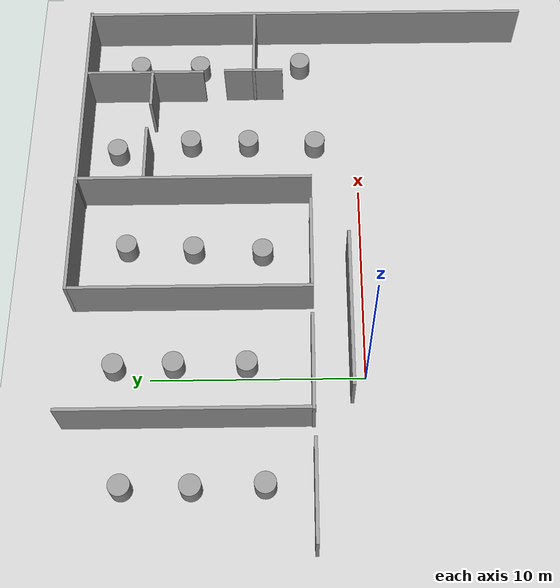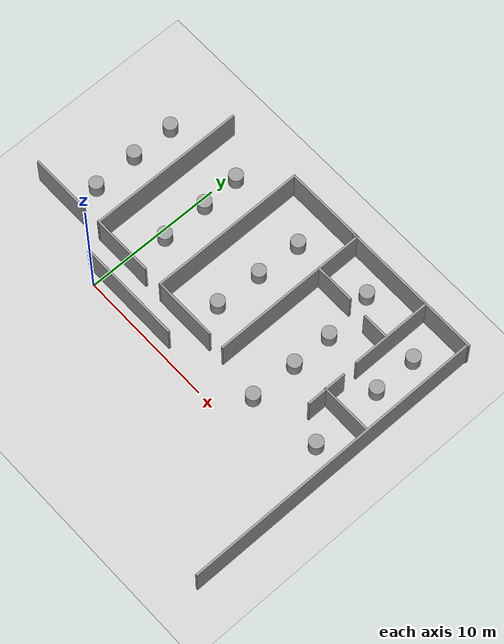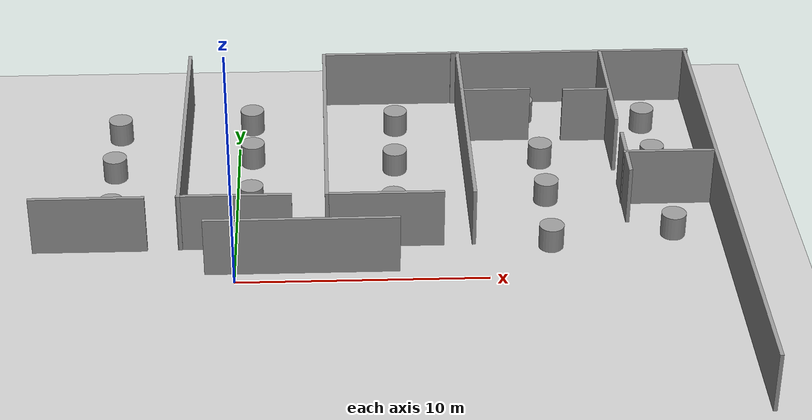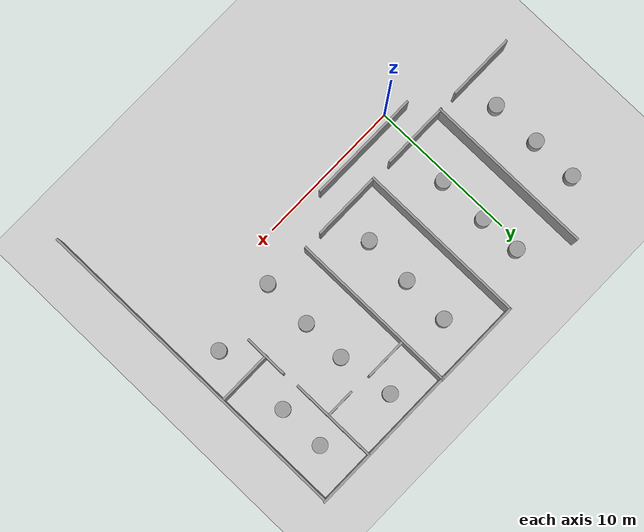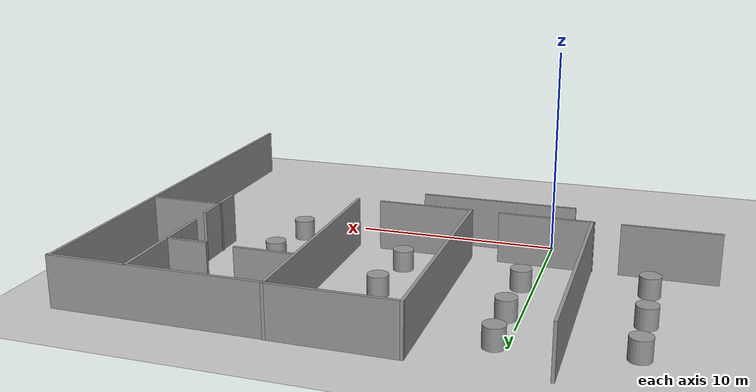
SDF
<sdf version="1.7">
 <world name="default">
  <model name="ground_plane">
   <static>1</static>
   <link name="link">
    <collision name="collision">
     <geometry><plane><normal>0 0 1</normal><size>100 100</size></plane></geometry>
     <surface>
      <contact><collide_bitmask>65535</collide_bitmask></contact>
      <friction><ode><mu>100</mu><mu2>50</mu2></ode></friction>
     </surface>
    </collision>
    <visual name="visual">
     <cast_shadows>0</cast_shadows>
     <geometry><plane><normal>0 0 1</normal><size>100 100</size></plane></geometry>
     <material>
      <script><uri>file://media/materials/scripts/gazebo.material</uri><name>Gazebo/Grey</name></script>
     </material>
    </visual>
   </link>
  </model>
  <model name="5th_v2">
   <link name="Wall_101">
    <pose>19.5337 2.57533 0 0 0 -1.5708</pose>
    <visual name="Wall_101_Visual">
     <pose>0 0 1.25 0 -0 0</pose>
     <geometry><box><size>22.5 0.15 2.5</size></box></geometry>
     <material>
      <script><uri>file://media/materials/scripts/gazebo.material</uri><name>Gazebo/Grey</name></script>
      <ambient>1 1 1 1</ambient>
     </material>
     <meta><layer>0</layer></meta>
    </visual>
    <collision name="Wall_101_Collision">
     <pose>0 0 1.25 0 -0 0</pose>
     <geometry><box><size>22.5 0.15 2.5</size></box></geometry>
     <surface>
      <friction>
       <ode><mu>1</mu><mu2>1</mu2><fdir1>0 0 0</fdir1><slip1>0</slip1><slip2>0</slip2></ode>
       <torsional>
        <coefficient>1</coefficient>
        <patch_radius>0</patch_radius>
        <surface_radius>0</surface_radius>
        <use_patch_radius>1</use_patch_radius>
        <ode><slip>0</slip></ode>
       </torsional>
      </friction>
      <bounce><restitution_coefficient>0</restitution_coefficient><threshold>1e+06</threshold></bounce>
      <contact>
       <collide_without_contact>0</collide_without_contact>
       <collide_without_contact_bitmask>1</collide_without_contact_bitmask>
       <collide_bitmask>1</collide_bitmask>
       <ode>
        <soft_cfm>0</soft_cfm>
        <soft_erp>0.2</soft_erp>
        <kp>1e+13</kp>
        <kd>1</kd>
        <max_vel>0.01</max_vel>
        <min_depth>0</min_depth>
       </ode>
       <bullet>
        <split_impulse>1</split_impulse>
        <split_impulse_penetration_threshold>-0.01</split_impulse_penetration_threshold>
        <soft_cfm>0</soft_cfm>
        <soft_erp>0.2</soft_erp>
        <kp>1e+13</kp>
        <kd>1</kd>
       </bullet>
      </contact>
     </surface>
    </collision>
   </link>
   <link name="Wall_108">
    <pose>15.8645 5.27903 0 0 -0 1.5708</pose>
    <inertial>
     <inertia><ixx>0</ixx><ixy>0</ixy><ixz>0</ixz><iyy>0</iyy><iyz>0</iyz><izz>0</izz></inertia>
     <mass>0</mass>
    </inertial>
    <visual name="Wall_108_Visual">
     <pose>0 0 1.25 0 -0 0</pose>
     <geometry><box><size>2.96394 0.15 2.5</size></box></geometry>
     <material>
      <script><uri>file://media/materials/scripts/gazebo.material</uri><name>Gazebo/Grey</name></script>
      <ambient>1 1 1 1</ambient>
     </material>
     <meta><layer>0</layer></meta>
    </visual>
    <collision name="Wall_108_Collision">
     <pose>0 0 1.25 0 -0 0</pose>
     <geometry><box><size>2.96394 0.15 2.5</size></box></geometry>
     <surface>
      <friction>
       <ode><mu>1</mu><mu2>1</mu2><fdir1>0 0 0</fdir1><slip1>0</slip1><slip2>0</slip2></ode>
       <torsional>
        <coefficient>1</coefficient>
        <patch_radius>0</patch_radius>
        <surface_radius>0</surface_radius>
        <use_patch_radius>1</use_patch_radius>
        <ode><slip>0</slip></ode>
       </torsional>
      </friction>
      <bounce><restitution_coefficient>0</restitution_coefficient><threshold>1e+06</threshold></bounce>
      <contact>
       <collide_without_contact>0</collide_without_contact>
       <collide_without_contact_bitmask>1</collide_without_contact_bitmask>
       <collide_bitmask>1</collide_bitmask>
       <ode>
        <soft_cfm>0</soft_cfm>
        <soft_erp>0.2</soft_erp>
        <kp>1e+13</kp>
        <kd>1</kd>
        <max_vel>0.01</max_vel>
        <min_depth>0</min_depth>
       </ode>
       <bullet>
        <split_impulse>1</split_impulse>
        <split_impulse_penetration_threshold>-0.01</split_impulse_penetration_threshold>
        <soft_cfm>0</soft_cfm>
        <soft_erp>0.2</soft_erp>
        <kp>1e+13</kp>
        <kd>1</kd>
       </bullet>
      </contact>
     </surface>
    </collision>
   </link>
   <link name="Wall_108_clone_1">
    <pose>15.7933 10.8016 0 0 -0 1.5708</pose>
    <inertial>
     <inertia><ixx>0</ixx><ixy>0</ixy><ixz>0</ixz><iyy>0</iyy><iyz>0</iyz><izz>0</izz></inertia>
     <mass>0</mass>
    </inertial>
    <visual name="Wall_108_Visual">
     <pose>0 0 1.25 0 -0 0</pose>
     <geometry><box><size>5.97377 0.15 2.5</size></box></geometry>
     <material>
      <script><uri>file://media/materials/scripts/gazebo.material</uri><name>Gazebo/Grey</name></script>
      <ambient>1 1 1 1</ambient>
      <shader type="pixel"/>
     </material>
     <meta><layer>0</layer></meta>
    </visual>
    <collision name="Wall_108_Collision">
     <pose>0 0 1.25 0 -0 0</pose>
     <geometry><box><size>5.97377 0.15 2.5</size></box></geometry>
     <surface>
      <friction>
       <ode><mu>1</mu><mu2>1</mu2><fdir1>0 0 0</fdir1><slip1>0</slip1><slip2>0</slip2></ode>
       <torsional>
        <coefficient>1</coefficient>
        <patch_radius>0</patch_radius>
        <surface_radius>0</surface_radius>
        <use_patch_radius>1</use_patch_radius>
        <ode><slip>0</slip></ode>
       </torsional>
      </friction>
      <bounce><restitution_coefficient>0</restitution_coefficient><threshold>1e+06</threshold></bounce>
      <contact>
       <collide_without_contact>0</collide_without_contact>
       <collide_without_contact_bitmask>1</collide_without_contact_bitmask>
       <collide_bitmask>1</collide_bitmask>
       <ode>
        <soft_cfm>0</soft_cfm>
        <soft_erp>0.2</soft_erp>
        <kp>1e+13</kp>
        <kd>1</kd>
        <max_vel>0.01</max_vel>
        <min_depth>0</min_depth>
       </ode>
       <bullet>
        <split_impulse>1</split_impulse>
        <split_impulse_penetration_threshold>-0.01</split_impulse_penetration_threshold>
        <soft_cfm>0</soft_cfm>
        <soft_erp>0.2</soft_erp>
        <kp>1e+13</kp>
        <kd>1</kd>
       </bullet>
      </contact>
     </surface>
    </collision>
   </link>
   <link name="Wall_114">
    <pose>17.6178 5.25914 0 0 -0 0</pose>
    <inertial>
     <inertia><ixx>0</ixx><ixy>0</ixy><ixz>0</ixz><iyy>0</iyy><iyz>0</iyz><izz>0</izz></inertia>
     <mass>0</mass>
    </inertial>
    <visual name="Wall_114_Visual">
     <pose>0 0 1.25 0 -0 0</pose>
     <geometry><box><size>3.72578 0.15 2.5</size></box></geometry>
     <material>
      <script><uri>file://media/materials/scripts/gazebo.material</uri><name>Gazebo/Grey</name></script>
      <ambient>1 1 1 1</ambient>
     </material>
     <meta><layer>0</layer></meta>
    </visual>
    <collision name="Wall_114_Collision">
     <pose>0 0 1.25 0 -0 0</pose>
     <geometry><box><size>3.72578 0.15 2.5</size></box></geometry>
     <surface>
      <friction>
       <ode><mu>1</mu><mu2>1</mu2><fdir1>0 0 0</fdir1><slip1>0</slip1><slip2>0</slip2></ode>
       <torsional>
        <coefficient>1</coefficient>
        <patch_radius>0</patch_radius>
        <surface_radius>0</surface_radius>
        <use_patch_radius>1</use_patch_radius>
        <ode><slip>0</slip></ode>
       </torsional>
      </friction>
      <bounce><restitution_coefficient>0</restitution_coefficient><threshold>1e+06</threshold></bounce>
      <contact>
       <collide_without_contact>0</collide_without_contact>
       <collide_without_contact_bitmask>1</collide_without_contact_bitmask>
       <collide_bitmask>1</collide_bitmask>
       <ode>
        <soft_cfm>0</soft_cfm>
        <soft_erp>0.2</soft_erp>
        <kp>1e+13</kp>
        <kd>1</kd>
        <max_vel>0.01</max_vel>
        <min_depth>0</min_depth>
       </ode>
       <bullet>
        <split_impulse>1</split_impulse>
        <split_impulse_penetration_threshold>-0.01</split_impulse_penetration_threshold>
        <soft_cfm>0</soft_cfm>
        <soft_erp>0.2</soft_erp>
        <kp>1e+13</kp>
        <kd>1</kd>
       </bullet>
      </contact>
     </surface>
    </collision>
   </link>
   <link name="Wall_114_clone_0">
    <pose>10.9394 10.5296 0 0 -0 0</pose>
    <inertial>
     <inertia><ixx>0</ixx><ixy>0</ixy><ixz>0</ixz><iyy>0</iyy><iyz>0</iyz><izz>0</izz></inertia>
     <mass>0</mass>
    </inertial>
    <visual name="Wall_114_Visual">
     <pose>0 0 1.25 0 -0 0</pose>
     <geometry><box><size>2.97072 0.15 2.5</size></box></geometry>
     <material>
      <script><uri>file://media/materials/scripts/gazebo.material</uri><name>Gazebo/Grey</name></script>
      <ambient>1 1 1 1</ambient>
      <shader type="pixel"/>
     </material>
     <meta><layer>0</layer></meta>
    </visual>
    <collision name="Wall_114_Collision">
     <pose>0 0 1.25 0 -0 0</pose>
     <geometry><box><size>2.97072 0.15 2.5</size></box></geometry>
     <surface>
      <friction>
       <ode><mu>1</mu><mu2>1</mu2><fdir1>0 0 0</fdir1><slip1>0</slip1><slip2>0</slip2></ode>
       <torsional>
        <coefficient>1</coefficient>
        <patch_radius>0</patch_radius>
        <surface_radius>0</surface_radius>
        <use_patch_radius>1</use_patch_radius>
        <ode><slip>0</slip></ode>
       </torsional>
      </friction>
      <bounce><restitution_coefficient>0</restitution_coefficient><threshold>1e+06</threshold></bounce>
      <contact>
       <collide_without_contact>0</collide_without_contact>
       <collide_without_contact_bitmask>1</collide_without_contact_bitmask>
       <collide_bitmask>1</collide_bitmask>
       <ode>
        <soft_cfm>0</soft_cfm>
        <soft_erp>0.2</soft_erp>
        <kp>1e+13</kp>
        <kd>1</kd>
        <max_vel>0.01</max_vel>
        <min_depth>0</min_depth>
       </ode>
       <bullet>
        <split_impulse>1</split_impulse>
        <split_impulse_penetration_threshold>-0.01</split_impulse_penetration_threshold>
        <soft_cfm>0</soft_cfm>
        <soft_erp>0.2</soft_erp>
        <kp>1e+13</kp>
        <kd>1</kd>
       </bullet>
      </contact>
     </surface>
    </collision>
   </link>
   <link name="Wall_114_clone_0_clone">
    <pose>14.7944 10.4041 0 0 -0 0</pose>
    <inertial>
     <inertia><ixx>0</ixx><ixy>0</ixy><ixz>0</ixz><iyy>0</iyy><iyz>0</iyz><izz>0</izz></inertia>
     <mass>0</mass>
    </inertial>
    <visual name="Wall_114_Visual">
     <pose>0 0 1.25 0 -0 0</pose>
     <geometry><box><size>1.96716 0.15 2.5</size></box></geometry>
     <material>
      <script><uri>file://media/materials/scripts/gazebo.material</uri><name>Gazebo/Grey</name></script>
      <ambient>1 1 1 1</ambient>
      <shader type="pixel"/>
     </material>
     <meta><layer>0</layer></meta>
    </visual>
    <collision name="Wall_114_Collision">
     <pose>0 0 1.25 0 -0 0</pose>
     <geometry><box><size>1.96716 0.15 2.5</size></box></geometry>
     <surface>
      <friction>
       <ode><mu>1</mu><mu2>1</mu2><fdir1>0 0 0</fdir1><slip1>0</slip1><slip2>0</slip2></ode>
       <torsional>
        <coefficient>1</coefficient>
        <patch_radius>0</patch_radius>
        <surface_radius>0</surface_radius>
        <use_patch_radius>1</use_patch_radius>
        <ode><slip>0</slip></ode>
       </torsional>
      </friction>
      <bounce><restitution_coefficient>0</restitution_coefficient><threshold>1e+06</threshold></bounce>
      <contact>
       <collide_without_contact>0</collide_without_contact>
       <collide_without_contact_bitmask>1</collide_without_contact_bitmask>
       <collide_bitmask>1</collide_bitmask>
       <ode>
        <soft_cfm>0</soft_cfm>
        <soft_erp>0.2</soft_erp>
        <kp>1e+13</kp>
        <kd>1</kd>
        <max_vel>0.01</max_vel>
        <min_depth>0</min_depth>
       </ode>
       <bullet>
        <split_impulse>1</split_impulse>
        <split_impulse_penetration_threshold>-0.01</split_impulse_penetration_threshold>
        <soft_cfm>0</soft_cfm>
        <soft_erp>0.2</soft_erp>
        <kp>1e+13</kp>
        <kd>1</kd>
       </bullet>
      </contact>
     </surface>
    </collision>
   </link>
   <link name="Wall_32">
    <pose>-2.18428 8.13641 0 0 -0 1.5708</pose>
    <visual name="Wall_32_Visual">
     <pose>0 0 1.25 0 -0 0</pose>
     <geometry><box><size>11.5 0.15 2.5</size></box></geometry>
     <material>
      <script><uri>file://media/materials/scripts/gazebo.material</uri><name>Gazebo/Grey</name></script>
      <ambient>1 1 1 1</ambient>
     </material>
     <meta><layer>0</layer></meta>
    </visual>
    <collision name="Wall_32_Collision">
     <pose>0 0 1.25 0 -0 0</pose>
     <geometry><box><size>11.5 0.15 2.5</size></box></geometry>
     <surface>
      <friction>
       <ode><mu>1</mu><mu2>1</mu2><fdir1>0 0 0</fdir1><slip1>0</slip1><slip2>0</slip2></ode>
       <torsional>
        <coefficient>1</coefficient>
        <patch_radius>0</patch_radius>
        <surface_radius>0</surface_radius>
        <use_patch_radius>1</use_patch_radius>
        <ode><slip>0</slip></ode>
       </torsional>
      </friction>
      <bounce><restitution_coefficient>0</restitution_coefficient><threshold>1e+06</threshold></bounce>
      <contact>
       <collide_without_contact>0</collide_without_contact>
       <collide_without_contact_bitmask>1</collide_without_contact_bitmask>
       <collide_bitmask>1</collide_bitmask>
       <ode>
        <soft_cfm>0</soft_cfm>
        <soft_erp>0.2</soft_erp>
        <kp>1e+13</kp>
        <kd>1</kd>
        <max_vel>0.01</max_vel>
        <min_depth>0</min_depth>
       </ode>
       <bullet>
        <split_impulse>1</split_impulse>
        <split_impulse_penetration_threshold>-0.01</split_impulse_penetration_threshold>
        <soft_cfm>0</soft_cfm>
        <soft_erp>0.2</soft_erp>
        <kp>1e+13</kp>
        <kd>1</kd>
       </bullet>
      </contact>
     </surface>
    </collision>
   </link>
   <link name="Wall_42">
    <pose>3.66572 8.13641 0 0 -0 1.5708</pose>
    <visual name="Wall_42_Visual">
     <pose>0 0 1.25 0 -0 0</pose>
     <geometry><box><size>11.5 0.15 2.5</size></box></geometry>
     <material>
      <script><uri>file://media/materials/scripts/gazebo.material</uri><name>Gazebo/Grey</name></script>
      <ambient>1 1 1 1</ambient>
     </material>
     <meta><layer>0</layer></meta>
    </visual>
    <collision name="Wall_42_Collision">
     <pose>0 0 1.25 0 -0 0</pose>
     <geometry><box><size>11.5 0.15 2.5</size></box></geometry>
     <surface>
      <friction>
       <ode><mu>1</mu><mu2>1</mu2><fdir1>0 0 0</fdir1><slip1>0</slip1><slip2>0</slip2></ode>
       <torsional>
        <coefficient>1</coefficient>
        <patch_radius>0</patch_radius>
        <surface_radius>0</surface_radius>
        <use_patch_radius>1</use_patch_radius>
        <ode><slip>0</slip></ode>
       </torsional>
      </friction>
      <bounce><restitution_coefficient>0</restitution_coefficient><threshold>1e+06</threshold></bounce>
      <contact>
       <collide_without_contact>0</collide_without_contact>
       <collide_without_contact_bitmask>1</collide_without_contact_bitmask>
       <collide_bitmask>1</collide_bitmask>
       <ode>
        <soft_cfm>0</soft_cfm>
        <soft_erp>0.2</soft_erp>
        <kp>1e+13</kp>
        <kd>1</kd>
        <max_vel>0.01</max_vel>
        <min_depth>0</min_depth>
       </ode>
       <bullet>
        <split_impulse>1</split_impulse>
        <split_impulse_penetration_threshold>-0.01</split_impulse_penetration_threshold>
        <soft_cfm>0</soft_cfm>
        <soft_erp>0.2</soft_erp>
        <kp>1e+13</kp>
        <kd>1</kd>
       </bullet>
      </contact>
     </surface>
    </collision>
   </link>
   <link name="Wall_44_clone_0">
    <pose>2.65992 0.681451 0 0 -0 0</pose>
    <inertial>
     <inertia><ixx>0</ixx><ixy>0</ixy><ixz>0</ixz><iyy>0</iyy><iyz>0</iyz><izz>0</izz></inertia>
     <mass>0</mass>
    </inertial>
    <visual name="Wall_44_Visual">
     <pose>0 0 1.25 0 -0 0</pose>
     <geometry><box><size>7.67635 0.15 2.5</size></box></geometry>
     <material>
      <script><uri>file://media/materials/scripts/gazebo.material</uri><name>Gazebo/Grey</name></script>
      <ambient>1 1 1 1</ambient>
      <shader type="pixel"/>
     </material>
     <meta><layer>0</layer></meta>
    </visual>
    <collision name="Wall_44_Collision">
     <pose>0 0 1.25 0 -0 0</pose>
     <geometry><box><size>7.67635 0.15 2.5</size></box></geometry>
     <surface>
      <friction>
       <ode><mu>1</mu><mu2>1</mu2><fdir1>0 0 0</fdir1><slip1>0</slip1><slip2>0</slip2></ode>
       <torsional>
        <coefficient>1</coefficient>
        <patch_radius>0</patch_radius>
        <surface_radius>0</surface_radius>
        <use_patch_radius>1</use_patch_radius>
        <ode><slip>0</slip></ode>
       </torsional>
      </friction>
      <bounce><restitution_coefficient>0</restitution_coefficient><threshold>1e+06</threshold></bounce>
      <contact>
       <collide_without_contact>0</collide_without_contact>
       <collide_without_contact_bitmask>1</collide_without_contact_bitmask>
       <collide_bitmask>1</collide_bitmask>
       <ode>
        <soft_cfm>0</soft_cfm>
        <soft_erp>0.2</soft_erp>
        <kp>1e+13</kp>
        <kd>1</kd>
        <max_vel>0.01</max_vel>
        <min_depth>0</min_depth>
       </ode>
       <bullet>
        <split_impulse>1</split_impulse>
        <split_impulse_penetration_threshold>-0.01</split_impulse_penetration_threshold>
        <soft_cfm>0</soft_cfm>
        <soft_erp>0.2</soft_erp>
        <kp>1e+13</kp>
        <kd>1</kd>
       </bullet>
      </contact>
     </surface>
    </collision>
   </link>
   <link name="Wall_58">
    <pose>6.59059 13.8115 0 0 -0 4.6e-05</pose>
    <visual name="Wall_58_Visual">
     <pose>0 0 1.25 0 -0 0</pose>
     <geometry><box><size>6 0.15 2.5</size></box></geometry>
     <material>
      <script><uri>file://media/materials/scripts/gazebo.material</uri><name>Gazebo/Grey</name></script>
      <ambient>1 1 1 1</ambient>
     </material>
     <meta><layer>0</layer></meta>
    </visual>
    <collision name="Wall_58_Collision">
     <pose>0 0 1.25 0 -0 0</pose>
     <geometry><box><size>6 0.15 2.5</size></box></geometry>
     <surface>
      <friction>
       <ode><mu>1</mu><mu2>1</mu2><fdir1>0 0 0</fdir1><slip1>0</slip1><slip2>0</slip2></ode>
       <torsional>
        <coefficient>1</coefficient>
        <patch_radius>0</patch_radius>
        <surface_radius>0</surface_radius>
        <use_patch_radius>1</use_patch_radius>
        <ode><slip>0</slip></ode>
       </torsional>
      </friction>
      <bounce><restitution_coefficient>0</restitution_coefficient><threshold>1e+06</threshold></bounce>
      <contact>
       <collide_without_contact>0</collide_without_contact>
       <collide_without_contact_bitmask>1</collide_without_contact_bitmask>
       <collide_bitmask>1</collide_bitmask>
       <ode>
        <soft_cfm>0</soft_cfm>
        <soft_erp>0.2</soft_erp>
        <kp>1e+13</kp>
        <kd>1</kd>
        <max_vel>0.01</max_vel>
        <min_depth>0</min_depth>
       </ode>
       <bullet>
        <split_impulse>1</split_impulse>
        <split_impulse_penetration_threshold>-0.01</split_impulse_penetration_threshold>
        <soft_cfm>0</soft_cfm>
        <soft_erp>0.2</soft_erp>
        <kp>1e+13</kp>
        <kd>1</kd>
       </bullet>
      </contact>
     </surface>
    </collision>
   </link>
   <link name="Wall_60">
    <pose>9.51546 8.13668 0 0 0 -1.5708</pose>
    <visual name="Wall_60_Visual">
     <pose>0 0 1.25 0 -0 0</pose>
     <geometry><box><size>11.5 0.15 2.5</size></box></geometry>
     <material>
      <script><uri>file://media/materials/scripts/gazebo.material</uri><name>Gazebo/Grey</name></script>
      <ambient>1 1 1 1</ambient>
     </material>
     <meta><layer>0</layer></meta>
    </visual>
    <collision name="Wall_60_Collision">
     <pose>0 0 1.25 0 -0 0</pose>
     <geometry><box><size>11.5 0.15 2.5</size></box></geometry>
     <surface>
      <friction>
       <ode><mu>1</mu><mu2>1</mu2><fdir1>0 0 0</fdir1><slip1>0</slip1><slip2>0</slip2></ode>
       <torsional>
        <coefficient>1</coefficient>
        <patch_radius>0</patch_radius>
        <surface_radius>0</surface_radius>
        <use_patch_radius>1</use_patch_radius>
        <ode><slip>0</slip></ode>
       </torsional>
      </friction>
      <bounce><restitution_coefficient>0</restitution_coefficient><threshold>1e+06</threshold></bounce>
      <contact>
       <collide_without_contact>0</collide_without_contact>
       <collide_without_contact_bitmask>1</collide_without_contact_bitmask>
       <collide_bitmask>1</collide_bitmask>
       <ode>
        <soft_cfm>0</soft_cfm>
        <soft_erp>0.2</soft_erp>
        <kp>1e+13</kp>
        <kd>1</kd>
        <max_vel>0.01</max_vel>
        <min_depth>0</min_depth>
       </ode>
       <bullet>
        <split_impulse>1</split_impulse>
        <split_impulse_penetration_threshold>-0.01</split_impulse_penetration_threshold>
        <soft_cfm>0</soft_cfm>
        <soft_erp>0.2</soft_erp>
        <kp>1e+13</kp>
        <kd>1</kd>
       </bullet>
      </contact>
     </surface>
    </collision>
   </link>
   <link name="Wall_62">
    <pose>6.03107 2.46162 0 0 0 -3.14155</pose>
    <inertial>
     <inertia><ixx>0</ixx><ixy>0</ixy><ixz>0</ixz><iyy>0</iyy><iyz>0</iyz><izz>0</izz></inertia>
     <mass>0</mass>
    </inertial>
    <visual name="Wall_62_Visual">
     <pose>0 0 1.25 0 -0 0</pose>
     <geometry><box><size>4.57764 0.15 2.5</size></box></geometry>
     <material>
      <script><uri>file://media/materials/scripts/gazebo.material</uri><name>Gazebo/Grey</name></script>
      <ambient>1 1 1 1</ambient>
     </material>
     <meta><layer>0</layer></meta>
    </visual>
    <collision name="Wall_62_Collision">
     <pose>0 0 1.25 0 -0 0</pose>
     <geometry><box><size>4.57764 0.15 2.5</size></box></geometry>
     <surface>
      <friction>
       <ode><mu>1</mu><mu2>1</mu2><fdir1>0 0 0</fdir1><slip1>0</slip1><slip2>0</slip2></ode>
       <torsional>
        <coefficient>1</coefficient>
        <patch_radius>0</patch_radius>
        <surface_radius>0</surface_radius>
        <use_patch_radius>1</use_patch_radius>
        <ode><slip>0</slip></ode>
       </torsional>
      </friction>
      <bounce><restitution_coefficient>0</restitution_coefficient><threshold>1e+06</threshold></bounce>
      <contact>
       <collide_without_contact>0</collide_without_contact>
       <collide_without_contact_bitmask>1</collide_without_contact_bitmask>
       <collide_bitmask>1</collide_bitmask>
       <ode>
        <soft_cfm>0</soft_cfm>
        <soft_erp>0.2</soft_erp>
        <kp>1e+13</kp>
        <kd>1</kd>
        <max_vel>0.01</max_vel>
        <min_depth>0</min_depth>
       </ode>
       <bullet>
        <split_impulse>1</split_impulse>
        <split_impulse_penetration_threshold>-0.01</split_impulse_penetration_threshold>
        <soft_cfm>0</soft_cfm>
        <soft_erp>0.2</soft_erp>
        <kp>1e+13</kp>
        <kd>1</kd>
       </bullet>
      </contact>
     </surface>
    </collision>
   </link>
   <link name="Wall_62_clone">
    <pose>-0.005126 2.46625 0 0 0 -3.14155</pose>
    <inertial>
     <inertia><ixx>0</ixx><ixy>0</ixy><ixz>0</ixz><iyy>0</iyy><iyz>0</iyz><izz>0</izz></inertia>
     <mass>0</mass>
    </inertial>
    <visual name="Wall_62_Visual">
     <pose>0 0 1.25 0 -0 0</pose>
     <geometry><box><size>4.57764 0.15 2.5</size></box></geometry>
     <material>
      <script><uri>file://media/materials/scripts/gazebo.material</uri><name>Gazebo/Grey</name></script>
      <ambient>1 1 1 1</ambient>
      <shader type="pixel"/>
     </material>
     <meta><layer>0</layer></meta>
    </visual>
    <collision name="Wall_62_Collision">
     <pose>0 0 1.25 0 -0 0</pose>
     <geometry><box><size>4.57764 0.15 2.5</size></box></geometry>
     <surface>
      <friction>
       <ode><mu>1</mu><mu2>1</mu2><fdir1>0 0 0</fdir1><slip1>0</slip1><slip2>0</slip2></ode>
       <torsional>
        <coefficient>1</coefficient>
        <patch_radius>0</patch_radius>
        <surface_radius>0</surface_radius>
        <use_patch_radius>1</use_patch_radius>
        <ode><slip>0</slip></ode>
       </torsional>
      </friction>
      <bounce><restitution_coefficient>0</restitution_coefficient><threshold>1e+06</threshold></bounce>
      <contact>
       <collide_without_contact>0</collide_without_contact>
       <collide_without_contact_bitmask>1</collide_without_contact_bitmask>
       <collide_bitmask>1</collide_bitmask>
       <ode>
        <soft_cfm>0</soft_cfm>
        <soft_erp>0.2</soft_erp>
        <kp>1e+13</kp>
        <kd>1</kd>
        <max_vel>0.01</max_vel>
        <min_depth>0</min_depth>
       </ode>
       <bullet>
        <split_impulse>1</split_impulse>
        <split_impulse_penetration_threshold>-0.01</split_impulse_penetration_threshold>
        <soft_cfm>0</soft_cfm>
        <soft_erp>0.2</soft_erp>
        <kp>1e+13</kp>
        <kd>1</kd>
       </bullet>
      </contact>
     </surface>
    </collision>
   </link>
   <link name="Wall_62_clone_0">
    <pose>-5.79296 2.41222 0 0 0 -3.14155</pose>
    <inertial>
     <inertia><ixx>0</ixx><ixy>0</ixy><ixz>0</ixz><iyy>0</iyy><iyz>0</iyz><izz>0</izz></inertia>
     <mass>0</mass>
    </inertial>
    <visual name="Wall_62_Visual">
     <pose>0 0 1.25 0 -0 0</pose>
     <geometry><box><size>4.57764 0.15 2.5</size></box></geometry>
     <material>
      <script><uri>file://media/materials/scripts/gazebo.material</uri><name>Gazebo/Grey</name></script>
      <ambient>1 1 1 1</ambient>
      <shader type="pixel"/>
     </material>
     <meta><layer>0</layer></meta>
    </visual>
    <collision name="Wall_62_Collision">
     <pose>0 0 1.25 0 -0 0</pose>
     <geometry><box><size>4.57764 0.15 2.5</size></box></geometry>
     <surface>
      <friction>
       <ode><mu>1</mu><mu2>1</mu2><fdir1>0 0 0</fdir1><slip1>0</slip1><slip2>0</slip2></ode>
       <torsional>
        <coefficient>1</coefficient>
        <patch_radius>0</patch_radius>
        <surface_radius>0</surface_radius>
        <use_patch_radius>1</use_patch_radius>
        <ode><slip>0</slip></ode>
       </torsional>
      </friction>
      <bounce><restitution_coefficient>0</restitution_coefficient><threshold>1e+06</threshold></bounce>
      <contact>
       <collide_without_contact>0</collide_without_contact>
       <collide_without_contact_bitmask>1</collide_without_contact_bitmask>
       <collide_bitmask>1</collide_bitmask>
       <ode>
        <soft_cfm>0</soft_cfm>
        <soft_erp>0.2</soft_erp>
        <kp>1e+13</kp>
        <kd>1</kd>
        <max_vel>0.01</max_vel>
        <min_depth>0</min_depth>
       </ode>
       <bullet>
        <split_impulse>1</split_impulse>
        <split_impulse_penetration_threshold>-0.01</split_impulse_penetration_threshold>
        <soft_cfm>0</soft_cfm>
        <soft_erp>0.2</soft_erp>
        <kp>1e+13</kp>
        <kd>1</kd>
       </bullet>
      </contact>
     </surface>
    </collision>
   </link>
   <link name="Wall_75">
    <pose>14.4503 13.7781 0 0 -0 0</pose>
    <inertial>
     <inertia><ixx>0</ixx><ixy>0</ixy><ixz>0</ixz><iyy>0</iyy><iyz>0</iyz><izz>0</izz></inertia>
     <mass>0</mass>
    </inertial>
    <visual name="Wall_75_Visual">
     <pose>0 0 1.25 0 -0 0</pose>
     <geometry><box><size>10.4539 0.15 2.5</size></box></geometry>
     <material>
      <script><uri>file://media/materials/scripts/gazebo.material</uri><name>Gazebo/Grey</name></script>
      <ambient>1 1 1 1</ambient>
     </material>
     <meta><layer>0</layer></meta>
    </visual>
    <collision name="Wall_75_Collision">
     <pose>0 0 1.25 0 -0 0</pose>
     <geometry><box><size>10.4539 0.15 2.5</size></box></geometry>
     <surface>
      <friction>
       <ode><mu>1</mu><mu2>1</mu2><fdir1>0 0 0</fdir1><slip1>0</slip1><slip2>0</slip2></ode>
       <torsional>
        <coefficient>1</coefficient>
        <patch_radius>0</patch_radius>
        <surface_radius>0</surface_radius>
        <use_patch_radius>1</use_patch_radius>
        <ode><slip>0</slip></ode>
       </torsional>
      </friction>
      <bounce><restitution_coefficient>0</restitution_coefficient><threshold>1e+06</threshold></bounce>
      <contact>
       <collide_without_contact>0</collide_without_contact>
       <collide_without_contact_bitmask>1</collide_without_contact_bitmask>
       <collide_bitmask>1</collide_bitmask>
       <ode>
        <soft_cfm>0</soft_cfm>
        <soft_erp>0.2</soft_erp>
        <kp>1e+13</kp>
        <kd>1</kd>
        <max_vel>0.01</max_vel>
        <min_depth>0</min_depth>
       </ode>
       <bullet>
        <split_impulse>1</split_impulse>
        <split_impulse_penetration_threshold>-0.01</split_impulse_penetration_threshold>
        <soft_cfm>0</soft_cfm>
        <soft_erp>0.2</soft_erp>
        <kp>1e+13</kp>
        <kd>1</kd>
       </bullet>
      </contact>
     </surface>
    </collision>
   </link>
   <static>1</static>
  </model>
  <model name="unit_cylinder_clone_15">
   <pose>-5.12089 10.9939 0.499996 4e-06 3e-06 -0</pose>
   <link name="link">
    <inertial>
     <mass>1</mass>
     <inertia><ixx>0.145833</ixx><ixy>0</ixy><ixz>0</ixz><iyy>0.145833</iyy><iyz>0</iyz><izz>0.125</izz></inertia>
    </inertial>
    <collision name="collision">
     <geometry><cylinder><radius>0.5</radius><length>1</length></cylinder></geometry>
    </collision>
    <visual name="visual">
     <geometry><cylinder><radius>0.5</radius><length>1</length></cylinder></geometry>
     <material>
      <script><name>Gazebo/Grey</name><uri>file://media/materials/scripts/gazebo.material</uri></script>
     </material>
    </visual>
   </link>
  </model>
  <model name="unit_cylinder_clone_16">
   <pose>-5.15488 7.90187 0.499994 -4e-06 -3e-06 -0</pose>
   <link name="link">
    <inertial>
     <mass>1</mass>
     <inertia><ixx>0.145833</ixx><ixy>0</ixy><ixz>0</ixz><iyy>0.145833</iyy><iyz>0</iyz><izz>0.125</izz></inertia>
    </inertial>
    <collision name="collision">
     <geometry><cylinder><radius>0.5</radius><length>1</length></cylinder></geometry>
    </collision>
    <visual name="visual">
     <geometry><cylinder><radius>0.5</radius><length>1</length></cylinder></geometry>
     <material>
      <script><name>Gazebo/Grey</name><uri>file://media/materials/scripts/gazebo.material</uri></script>
     </material>
    </visual>
   </link>
  </model>
  <model name="unit_cylinder_clone_17">
   <pose>-5.07644 4.61876 0.499996 4e-06 3e-06 -0</pose>
   <link name="link">
    <inertial>
     <mass>1</mass>
     <inertia><ixx>0.145833</ixx><ixy>0</ixy><ixz>0</ixz><iyy>0.145833</iyy><iyz>0</iyz><izz>0.125</izz></inertia>
    </inertial>
    <collision name="collision">
     <geometry><cylinder><radius>0.5</radius><length>1</length></cylinder></geometry>
    </collision>
    <visual name="visual">
     <geometry><cylinder><radius>0.5</radius><length>1</length></cylinder></geometry>
     <material>
      <script><name>Gazebo/Grey</name><uri>file://media/materials/scripts/gazebo.material</uri></script>
     </material>
    </visual>
   </link>
  </model>
  <model name="unit_cylinder_clone_20">
   <pose>0.578188 5.50392 0.499998 3e-06 -2e-06 0</pose>
   <link name="link">
    <inertial>
     <mass>1</mass>
     <inertia><ixx>0.145833</ixx><ixy>0</ixy><ixz>0</ixz><iyy>0.145833</iyy><iyz>0</iyz><izz>0.125</izz></inertia>
    </inertial>
    <collision name="collision">
     <geometry><cylinder><radius>0.5</radius><length>1</length></cylinder></geometry>
    </collision>
    <visual name="visual">
     <geometry><cylinder><radius>0.5</radius><length>1</length></cylinder></geometry>
     <material>
      <script><name>Gazebo/Grey</name><uri>file://media/materials/scripts/gazebo.material</uri></script>
     </material>
    </visual>
   </link>
  </model>
  <model name="unit_cylinder_clone_21">
   <pose>0.583118 8.87857 0.499998 3e-06 -2e-06 0</pose>
   <link name="link">
    <inertial>
     <mass>1</mass>
     <inertia><ixx>0.145833</ixx><ixy>0</ixy><ixz>0</ixz><iyy>0.145833</iyy><iyz>0</iyz><izz>0.125</izz></inertia>
    </inertial>
    <collision name="collision">
     <geometry><cylinder><radius>0.5</radius><length>1</length></cylinder></geometry>
    </collision>
    <visual name="visual">
     <geometry><cylinder><radius>0.5</radius><length>1</length></cylinder></geometry>
     <material>
      <script><name>Gazebo/Grey</name><uri>file://media/materials/scripts/gazebo.material</uri></script>
     </material>
    </visual>
   </link>
  </model>
  <model name="unit_cylinder_clone_22">
   <pose>0.516487 11.6426 0.499992 -3e-06 2e-06 0</pose>
   <link name="link">
    <inertial>
     <mass>1</mass>
     <inertia><ixx>0.145833</ixx><ixy>0</ixy><ixz>0</ixz><iyy>0.145833</iyy><iyz>0</iyz><izz>0.125</izz></inertia>
    </inertial>
    <collision name="collision">
     <geometry><cylinder><radius>0.5</radius><length>1</length></cylinder></geometry>
    </collision>
    <visual name="visual">
     <geometry><cylinder><radius>0.5</radius><length>1</length></cylinder></geometry>
     <material>
      <script><name>Gazebo/Grey</name><uri>file://media/materials/scripts/gazebo.material</uri></script>
     </material>
    </visual>
   </link>
  </model>
  <model name="unit_cylinder_clone_23">
   <pose>6.3981 4.80168 0.499992 -3e-06 2e-06 0</pose>
   <link name="link">
    <inertial>
     <mass>1</mass>
     <inertia><ixx>0.145833</ixx><ixy>0</ixy><ixz>0</ixz><iyy>0.145833</iyy><iyz>0</iyz><izz>0.125</izz></inertia>
    </inertial>
    <collision name="collision">
     <geometry><cylinder><radius>0.5</radius><length>1</length></cylinder></geometry>
    </collision>
    <visual name="visual">
     <geometry><cylinder><radius>0.5</radius><length>1</length></cylinder></geometry>
     <material>
      <script><name>Gazebo/Grey</name><uri>file://media/materials/scripts/gazebo.material</uri></script>
     </material>
    </visual>
   </link>
  </model>
  <model name="unit_cylinder_clone_24">
   <pose>6.56013 8.14562 0.499992 -3e-06 2e-06 0</pose>
   <link name="link">
    <inertial>
     <mass>1</mass>
     <inertia><ixx>0.145833</ixx><ixy>0</ixy><ixz>0</ixz><iyy>0.145833</iyy><iyz>0</iyz><izz>0.125</izz></inertia>
    </inertial>
    <collision name="collision">
     <geometry><cylinder><radius>0.5</radius><length>1</length></cylinder></geometry>
    </collision>
    <visual name="visual">
     <geometry><cylinder><radius>0.5</radius><length>1</length></cylinder></geometry>
     <material>
      <script><name>Gazebo/Grey</name><uri>file://media/materials/scripts/gazebo.material</uri></script>
     </material>
    </visual>
   </link>
  </model>
  <model name="unit_cylinder_clone_25">
   <pose>6.69895 11.3893 0.499992 -3e-06 2e-06 0</pose>
   <link name="link">
    <inertial>
     <mass>1</mass>
     <inertia><ixx>0.145833</ixx><ixy>0</ixy><ixz>0</ixz><iyy>0.145833</iyy><iyz>0</iyz><izz>0.125</izz></inertia>
    </inertial>
    <collision name="collision">
     <geometry><cylinder><radius>0.5</radius><length>1</length></cylinder></geometry>
    </collision>
    <visual name="visual">
     <geometry><cylinder><radius>0.5</radius><length>1</length></cylinder></geometry>
     <material>
      <script><name>Gazebo/Grey</name><uri>file://media/materials/scripts/gazebo.material</uri></script>
     </material>
    </visual>
   </link>
  </model>
  <model name="unit_cylinder_clone_30">
   <pose>12.2332 12.1796 0.499997 3e-06 -2e-06 0</pose>
   <link name="link">
    <inertial>
     <mass>1</mass>
     <inertia><ixx>0.145833</ixx><ixy>0</ixy><ixz>0</ixz><iyy>0.145833</iyy><iyz>0</iyz><izz>0.125</izz></inertia>
    </inertial>
    <collision name="collision">
     <geometry><cylinder><radius>0.5</radius><length>1</length></cylinder></geometry>
    </collision>
    <visual name="visual">
     <geometry><cylinder><radius>0.5</radius><length>1</length></cylinder></geometry>
     <material>
      <script><name>Gazebo/Grey</name><uri>file://media/materials/scripts/gazebo.material</uri></script>
     </material>
    </visual>
   </link>
  </model>
  <model name="unit_cylinder_clone_31">
   <pose>17.4141 11.2766 0.499992 -3e-06 3e-06 0</pose>
   <link name="link">
    <inertial>
     <mass>1</mass>
     <inertia><ixx>0.145833</ixx><ixy>0</ixy><ixz>0</ixz><iyy>0.145833</iyy><iyz>0</iyz><izz>0.125</izz></inertia>
    </inertial>
    <collision name="collision">
     <geometry><cylinder><radius>0.5</radius><length>1</length></cylinder></geometry>
    </collision>
    <visual name="visual">
     <geometry><cylinder><radius>0.5</radius><length>1</length></cylinder></geometry>
     <material>
      <script><name>Gazebo/Grey</name><uri>file://media/materials/scripts/gazebo.material</uri></script>
     </material>
    </visual>
   </link>
  </model>
  <model name="unit_cylinder_clone_32">
   <pose>17.4198 8.1584 0.499997 3e-06 -3e-06 0</pose>
   <link name="link">
    <inertial>
     <mass>1</mass>
     <inertia><ixx>0.145833</ixx><ixy>0</ixy><ixz>0</ixz><iyy>0.145833</iyy><iyz>0</iyz><izz>0.125</izz></inertia>
    </inertial>
    <collision name="collision">
     <geometry><cylinder><radius>0.5</radius><length>1</length></cylinder></geometry>
    </collision>
    <visual name="visual">
     <geometry><cylinder><radius>0.5</radius><length>1</length></cylinder></geometry>
     <material>
      <script><name>Gazebo/Grey</name><uri>file://media/materials/scripts/gazebo.material</uri></script>
     </material>
    </visual>
   </link>
  </model>
  <model name="unit_cylinder_clone_33">
   <pose>17.5734 2.8986 0.499992 -3e-06 3e-06 0</pose>
   <link name="link">
    <inertial>
     <mass>1</mass>
     <inertia><ixx>0.145833</ixx><ixy>0</ixy><ixz>0</ixz><iyy>0.145833</iyy><iyz>0</iyz><izz>0.125</izz></inertia>
    </inertial>
    <collision name="collision">
     <geometry><cylinder><radius>0.5</radius><length>1</length></cylinder></geometry>
    </collision>
    <visual name="visual">
     <geometry><cylinder><radius>0.5</radius><length>1</length></cylinder></geometry>
     <material>
      <script><name>Gazebo/Grey</name><uri>file://media/materials/scripts/gazebo.material</uri></script>
     </material>
    </visual>
   </link>
  </model>
  <model name="unit_cylinder_clone_40">
   <pose>12.5886 2.18579 0.499998 3e-06 -4e-06 0</pose>
   <link name="link">
    <inertial>
     <mass>1</mass>
     <inertia><ixx>0.145833</ixx><ixy>0</ixy><ixz>0</ixz><iyy>0.145833</iyy><iyz>0</iyz><izz>0.125</izz></inertia>
    </inertial>
    <collision name="collision">
     <geometry><cylinder><radius>0.5</radius><length>1</length></cylinder></geometry>
    </collision>
    <visual name="visual">
     <geometry><cylinder><radius>0.5</radius><length>1</length></cylinder></geometry>
     <material>
      <script><name>Gazebo/Grey</name><uri>file://media/materials/scripts/gazebo.material</uri></script>
     </material>
    </visual>
   </link>
  </model>
  <model name="unit_cylinder_clone_41">
   <pose>12.6975 5.56317 0.499992 -3e-06 -4e-06 -0</pose>
   <link name="link">
    <inertial>
     <mass>1</mass>
     <inertia><ixx>0.145833</ixx><ixy>0</ixy><ixz>0</ixz><iyy>0.145833</iyy><iyz>0</iyz><izz>0.125</izz></inertia>
    </inertial>
    <collision name="collision">
     <geometry><cylinder><radius>0.5</radius><length>1</length></cylinder></geometry>
    </collision>
    <visual name="visual">
     <geometry><cylinder><radius>0.5</radius><length>1</length></cylinder></geometry>
     <material>
      <script><name>Gazebo/Grey</name><uri>file://media/materials/scripts/gazebo.material</uri></script>
     </material>
    </visual>
   </link>
  </model>
  <model name="unit_cylinder_clone_42">
   <pose>12.7162 8.49286 0.499992 -3e-06 -4e-06 -0</pose>
   <link name="link">
    <inertial>
     <mass>1</mass>
     <inertia><ixx>0.145833</ixx><ixy>0</ixy><ixz>0</ixz><iyy>0.145833</iyy><iyz>0</iyz><izz>0.125</izz></inertia>
    </inertial>
    <collision name="collision">
     <geometry><cylinder><radius>0.5</radius><length>1</length></cylinder></geometry>
    </collision>
    <visual name="visual">
     <geometry><cylinder><radius>0.5</radius><length>1</length></cylinder></geometry>
     <material>
      <script><name>Gazebo/Grey</name><uri>file://media/materials/scripts/gazebo.material</uri></script>
     </material>
    </visual>
   </link>
  </model>
 </world>
</sdf>
